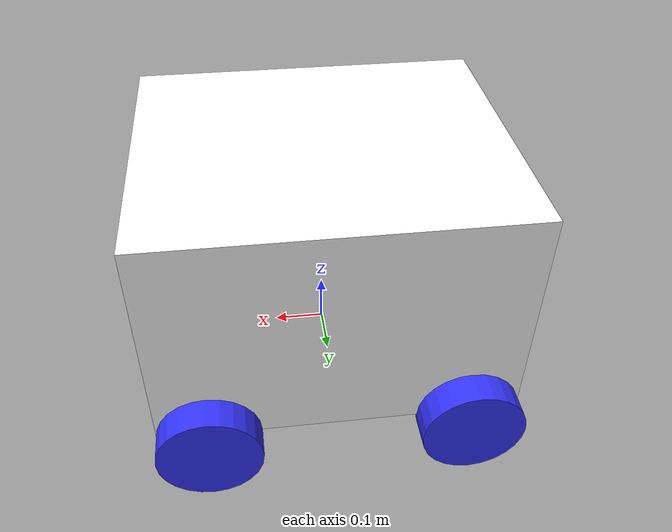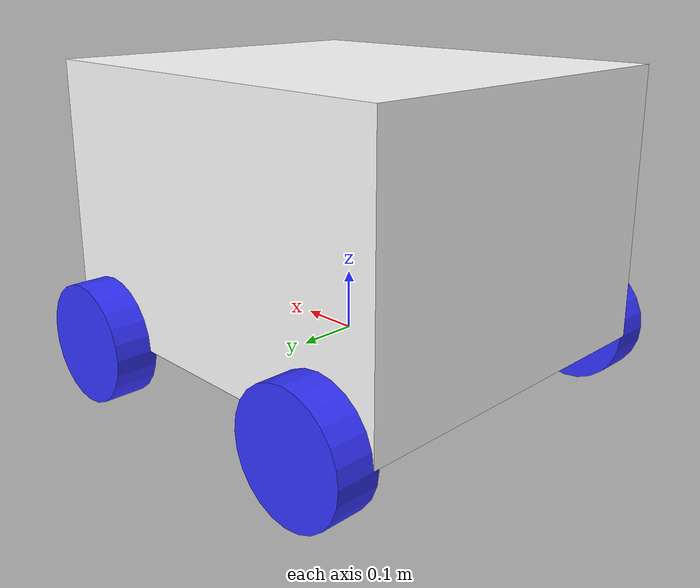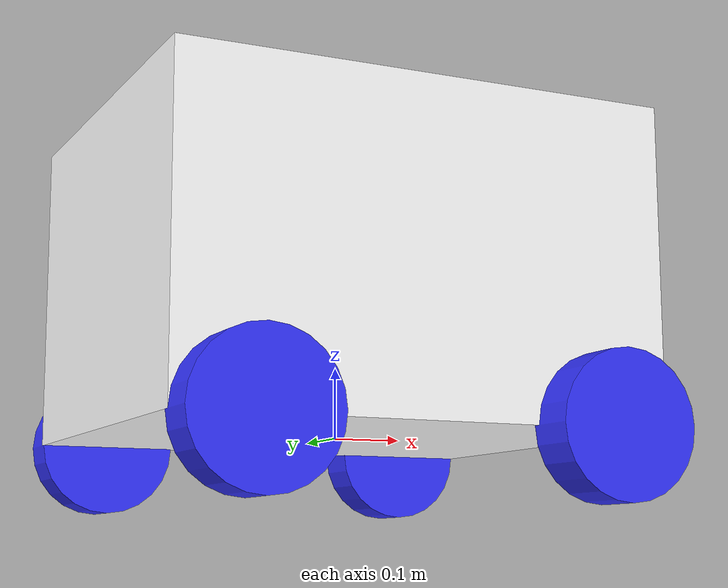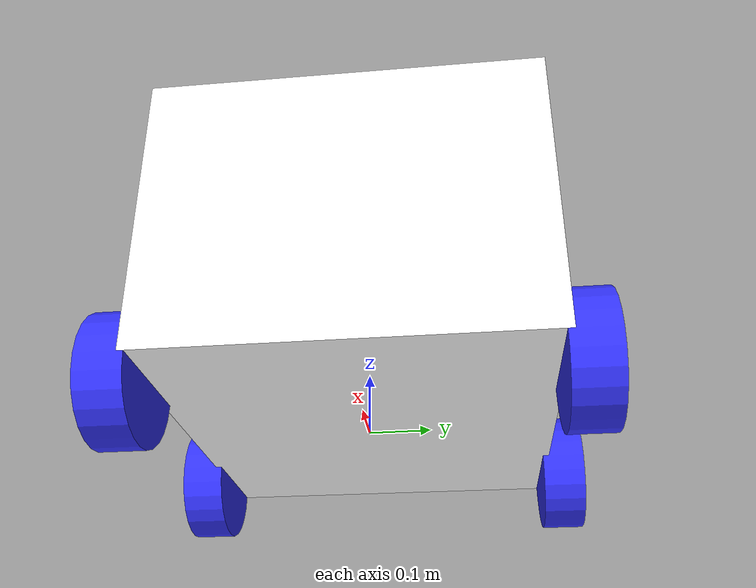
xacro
<?xml version="1.0"?>
<robot xmlns:xacro="http://www.ros.org/wiki/xacro" >

    <xacro:include filename="inertial_macros.xacro"/>

    <material name="white">
        <color rgba="1 1 1 1" />
    </material>

    <material name="orange">
        <color rgba="1 0.3 0.1 1"/>
    </material>

    <material name="blue">
        <color rgba="0.2 0.2 1 1"/>
    </material>

    <material name="black">
        <color rgba="0 0 0 1"/>
    </material>

    <material name="red">
        <color rgba="0.8 0 0 0.8"/>
    </material>

    <!-- BASE LINK -->

    <link name="base_link">
    </link>

    <!-- BASE_FOOTPRINT LINK -->

    <joint name="base_footprint_joint" type="fixed">
        <parent link="base_link"/>
        <child link="base_footprint"/>
        <origin xyz="0 0 0" rpy="0 0 0"/>
    </joint>

    <link name="base_footprint">
    </link>

    <!-- CHASSIS LINK -->

    <joint name="chassis_joint" type="fixed">
        <parent link="base_link"/>
        <child link="chassis"/>
        <origin xyz="-0.35 0 0"/>
    </joint>

    <link name="chassis">
        <visual>
            <origin xyz="0.35 0 0.225"/>
            <geometry>
                <box size="0.7 0.6 0.45"/>
            </geometry>
            <material name="white"/>
        </visual>
        <collision>
            <origin xyz="0.35 0 0.225"/>
            <geometry>
                <box size="0.7 0.6 0.45"/>
            </geometry>
        </collision>
        <xacro:inertial_box mass="30" x="0.7" y="0.6" z="0.45">
            <origin xyz="0.35 0 0.225" rpy="0 0 0"/>
        </xacro:inertial_box>
    </link>

    <gazebo reference="chassis">
        <material>Gazebo/White</material>
        <mu1 value="0.001"/>
        <mu2 value="0.001"/>
    </gazebo>

    <!-- LEFT BACK WHEEL LINK -->

    <joint name="left_back_wheel_joint" type="continuous">
        <parent link="base_link"/>
        <child link="left_back_wheel"/>
        <origin xyz="0.25 0.325 0" rpy="-${pi/2} 0 0" />
        <axis xyz="0 0 1"/>
        <limit effort="10000" velocity="1000"/>
        <dynamics damping="1.0" friction="1.0"/>
    </joint>

    <link name="left_back_wheel">
        <visual>
            <geometry>
                <cylinder radius="0.1" length="0.07"/>
            </geometry>
            <material name="blue"/>
        </visual>
        <collision>
            <geometry>
                <sphere radius="0.1"/>
            </geometry>
        </collision>
        <xacro:inertial_cylinder mass="1" length="0.07" radius="0.1">
            <origin xyz="0 0 0" rpy="0 0 0"/>
        </xacro:inertial_cylinder>
    </link>

    <gazebo reference="left_back_wheel">
        <material>Gazebo/Blue</material>

    </gazebo>

    <!-- RIGHT BACK WHEEL LINK -->

    <joint name="right_back_wheel_joint" type="continuous">
        <parent link="base_link"/>
        <child link="right_back_wheel"/>
        <origin xyz="0.25 -0.325 0" rpy="${pi/2} 0 0" />
        <axis xyz="0 0 -1"/>
        <limit effort="10000" velocity="1000"/>
        <dynamics damping="1.0" friction="1.0"/>
    </joint>

    <link name="right_back_wheel">
        <visual>
            <geometry>
                <cylinder radius="0.1" length="0.07"/>
            </geometry>
            <material name="blue"/>
        </visual>
        <collision>
            <geometry>
                <sphere radius="0.1"/>
            </geometry>
        </collision>
        <xacro:inertial_cylinder mass="1" length="0.07" radius="0.1">
            <origin xyz="0 0 0" rpy="0 0 0"/>
        </xacro:inertial_cylinder>
    </link>

    <gazebo reference="right_back_wheel">
        <material>Gazebo/Blue</material>

    </gazebo>

    <!-- LEFT FRONT WHEEL LINK -->

    <joint name="left_front_wheel_joint" type="continuous">
        <parent link="base_link"/>
        <child link="left_front_wheel"/>
        <origin xyz="-0.25 0.325 0" rpy="-${pi/2} 0 0" />
        <axis xyz="0 0 1"/>
        <limit effort="10000" velocity="1000"/>
        <dynamics damping="1.0" friction="1.0"/>
    </joint>

    <link name="left_front_wheel">
        <visual>
            <geometry>
                <cylinder radius="0.1" length="0.07"/>
            </geometry>
            <material name="blue"/>
        </visual>
        <collision>
            <geometry>
                <sphere radius="0.1"/>
            </geometry>
        </collision>
        <xacro:inertial_cylinder mass="1" length="0.07" radius="0.1">
            <origin xyz="0 0 0" rpy="0 0 0"/>
        </xacro:inertial_cylinder>
    </link>

    <gazebo reference="left_front_wheel">
        <material>Gazebo/Blue</material>
        <mu1 value="0.001"/>
        <mu2 value="0.001"/>
    </gazebo>

   <!-- RIGHT FRONT WHEEL LINK -->

    <joint name="right_front_wheel_joint" type="continuous">
        <parent link="base_link"/>
        <child link="right_front_wheel"/>
        <origin xyz="-0.25 -0.325 0" rpy="${pi/2} 0 0" />
        <axis xyz="0 0 -1"/>
        <limit effort="10000" velocity="1000"/>
        <dynamics damping="1.0" friction="1.0"/>
    </joint>

    <link name="right_front_wheel">
        <visual>
            <geometry>
                <cylinder radius="0.1" length="0.07"/>
            </geometry>
            <material name="blue"/>
        </visual>
        <collision>
            <geometry>
                <sphere radius="0.1"/>
            </geometry>
        </collision>
        <xacro:inertial_cylinder mass="1" length="0.07" radius="0.1">
            <origin xyz="0 0 0" rpy="0 0 0"/>
        </xacro:inertial_cylinder>
    </link>

    <gazebo reference="right_front_wheel">
        <material>Gazebo/Blue</material>
        <mu1 value="0.001"/>
        <mu2 value="0.001"/>
    </gazebo>

</robot>
